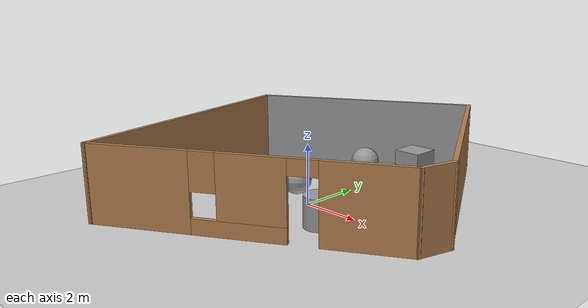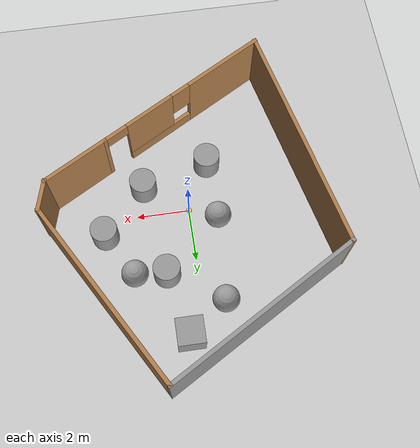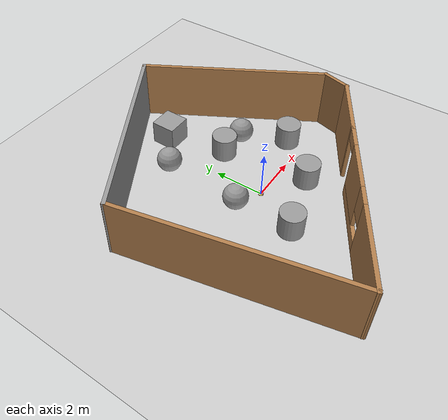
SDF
<sdf version="1.7">
 <world name="default">
  <light name="sun" type="directional">
   <pose>0 0 10 0 -0 0</pose>
   <diffuse>0.8 0.8 0.8 1</diffuse>
   <specular>0.2 0.2 0.2 1</specular>
   <attenuation>
    <range>1000</range>
    <constant>0.9</constant>
    <linear>0.01</linear>
    <quadratic>0.001</quadratic>
   </attenuation>
   <direction>-0.5 0.1 -0.9</direction>
   <spot><inner_angle>0</inner_angle><outer_angle>0</outer_angle><falloff>0</falloff></spot>
  </light>
  <model name="ground_plane">
   <static>1</static>
   <link name="link">
    <collision name="collision">
     <geometry><plane><normal>0 0 1</normal><size>100 100</size></plane></geometry>
     <surface>
      <contact><collide_bitmask>65535</collide_bitmask></contact>
      <friction><ode><mu>100</mu><mu2>50</mu2></ode></friction>
     </surface>
    </collision>
    <visual name="visual">
     <cast_shadows>0</cast_shadows>
     <geometry><plane><normal>0 0 1</normal><size>100 100</size></plane></geometry>
     <material>
      <script><uri>file://media/materials/scripts/gazebo.material</uri><name>Gazebo/Grey</name></script>
     </material>
    </visual>
   </link>
  </model>
  <gravity>0 0 -9.8</gravity>
  <magnetic_field>6e-06 2.3e-05 -4.2e-05</magnetic_field>
  <atmosphere type="adiabatic"/>
  <physics type="ode">
   <max_step_size>0.001</max_step_size>
   <real_time_factor>1</real_time_factor>
   <real_time_update_rate>1000</real_time_update_rate>
  </physics>
  <scene><ambient>0.4 0.4 0.4 1</ambient><background>0.7 0.7 0.7 1</background><shadows>1</shadows></scene>
  <spherical_coordinates>
   <surface_model>EARTH_WGS84</surface_model>
   <latitude_deg>0</latitude_deg>
   <longitude_deg>0</longitude_deg>
   <elevation>0</elevation>
   <heading_deg>0</heading_deg>
  </spherical_coordinates>
  <model name="mycar">
   <link name="base_footprint">
    <inertial>
     <pose>0.00127 0 0.093611 0 -0 0</pose>
     <mass>0.63</mass>
     <inertia>
      <ixx>0.00557395</ixx>
      <ixy>0</ixy>
      <ixz>-1.11111e-05</ixz>
      <iyy>0.00563694</iyy>
      <iyz>0</iyz>
      <izz>0.00261003</izz>
     </inertia>
    </inertial>
    <collision name="base_footprint_fixed_joint_lump__base_link_collision">
     <pose>0 0 0.055 0 -0 0</pose>
     <geometry><cylinder><length>0.08</length><radius>0.1</radius></cylinder></geometry>
    </collision>
    <collision name="base_footprint_fixed_joint_lump__camera_collision_1">
     <pose>0.08 0 0.1075 0 -0 0</pose>
     <geometry><box><size>0.01 0.025 0.025</size></box></geometry>
    </collision>
    <collision name="base_footprint_fixed_joint_lump__support_collision_2">
     <pose>0 0 0.17 0 -0 0</pose>
     <geometry><cylinder><length>0.15</length><radius>0.01</radius></cylinder></geometry>
    </collision>
    <collision name="base_footprint_fixed_joint_lump__laser_collision_3">
     <pose>0 0 0.27 0 -0 0</pose>
     <geometry><cylinder><length>0.05</length><radius>0.03</radius></cylinder></geometry>
    </collision>
    <visual name="base_footprint_visual"><geometry><sphere><radius>0.001</radius></sphere></geometry></visual>
    <visual name="base_footprint_fixed_joint_lump__base_link_visual_1">
     <pose>0 0 0.055 0 -0 0</pose>
     <geometry><cylinder><length>0.08</length><radius>0.1</radius></cylinder></geometry>
     <material>
      <script><name>Gazebo/Yellow</name><uri>file://media/materials/scripts/gazebo.material</uri></script>
     </material>
    </visual>
    <visual name="base_footprint_fixed_joint_lump__camera_visual_2">
     <pose>0.08 0 0.1075 0 -0 0</pose>
     <geometry><box><size>0.01 0.025 0.025</size></box></geometry>
     <material>
      <script><name>Gazebo/Blue</name><uri>file://media/materials/scripts/gazebo.material</uri></script>
     </material>
    </visual>
    <visual name="base_footprint_fixed_joint_lump__support_visual_3">
     <pose>0 0 0.17 0 -0 0</pose>
     <geometry><cylinder><length>0.15</length><radius>0.01</radius></cylinder></geometry>
     <material>
      <script><name>Gazebo/White</name><uri>file://media/materials/scripts/gazebo.material</uri></script>
     </material>
    </visual>
    <visual name="base_footprint_fixed_joint_lump__laser_visual_4">
     <pose>0 0 0.27 0 -0 0</pose>
     <geometry><cylinder><length>0.05</length><radius>0.03</radius></cylinder></geometry>
     <material>
      <script><name>Gazebo/Black</name><uri>file://media/materials/scripts/gazebo.material</uri></script>
     </material>
    </visual>
   </link>
   <joint name="back_wheel2base_link" type="revolute">
    <pose relative_to="base_footprint">-0.0925 0 0.0075 0 -0 0</pose>
    <parent>base_footprint</parent>
    <child>back_wheel</child>
    <axis>
     <xyz>1 1 1</xyz>
     <limit><lower>-1e+16</lower><upper>1e+16</upper></limit>
     <dynamics><spring_reference>0</spring_reference><spring_stiffness>0</spring_stiffness></dynamics>
    </axis>
   </joint>
   <link name="back_wheel">
    <pose relative_to="back_wheel2base_link">0 0 0 0 -0 0</pose>
    <inertial>
     <mass>0.03</mass>
     <inertia>
      <ixx>6.75e-07</ixx>
      <ixy>0</ixy>
      <ixz>0</ixz>
      <iyy>6.75e-07</iyy>
      <iyz>0</iyz>
      <izz>6.75e-07</izz>
     </inertia>
    </inertial>
    <collision name="back_wheel_collision">
     <geometry><sphere><radius>0.0075</radius></sphere></geometry>
    </collision>
    <visual name="back_wheel_visual">
     <geometry><sphere><radius>0.0075</radius></sphere></geometry>
     <material>
      <script><name>Gazebo/Red</name><uri>file://media/materials/scripts/gazebo.material</uri></script>
     </material>
    </visual>
   </link>
   <joint name="front_wheel2base_link" type="revolute">
    <pose relative_to="base_footprint">0.0925 0 0.0075 0 -0 0</pose>
    <parent>base_footprint</parent>
    <child>front_wheel</child>
    <axis>
     <xyz>1 1 1</xyz>
     <limit><lower>-1e+16</lower><upper>1e+16</upper></limit>
     <dynamics><spring_reference>0</spring_reference><spring_stiffness>0</spring_stiffness></dynamics>
    </axis>
   </joint>
   <link name="front_wheel">
    <pose relative_to="front_wheel2base_link">0 0 0 0 -0 0</pose>
    <inertial>
     <mass>0.03</mass>
     <inertia>
      <ixx>6.75e-07</ixx>
      <ixy>0</ixy>
      <ixz>0</ixz>
      <iyy>6.75e-07</iyy>
      <iyz>0</iyz>
      <izz>6.75e-07</izz>
     </inertia>
    </inertial>
    <collision name="front_wheel_collision">
     <geometry><sphere><radius>0.0075</radius></sphere></geometry>
    </collision>
    <visual name="front_wheel_visual">
     <geometry><sphere><radius>0.0075</radius></sphere></geometry>
     <material>
      <script><name>Gazebo/Red</name><uri>file://media/materials/scripts/gazebo.material</uri></script>
     </material>
    </visual>
   </link>
   <joint name="left_wheel2base_link" type="revolute">
    <pose relative_to="base_footprint">0 0.1 0.0325 0 -0 0</pose>
    <parent>base_footprint</parent>
    <child>left_wheel</child>
    <axis>
     <xyz>0 1 0</xyz>
     <limit><lower>-1e+16</lower><upper>1e+16</upper></limit>
     <dynamics><spring_reference>0</spring_reference><spring_stiffness>0</spring_stiffness></dynamics>
    </axis>
   </joint>
   <link name="left_wheel">
    <pose relative_to="left_wheel2base_link">0 0 0 0 -0 0</pose>
    <inertial>
     <mass>0.05</mass>
     <inertia>
      <ixx>1.41406e-05</ixx>
      <ixy>0</ixy>
      <ixz>0</ixz>
      <iyy>1.41406e-05</iyy>
      <iyz>0</iyz>
      <izz>2.64063e-05</izz>
     </inertia>
    </inertial>
    <collision name="left_wheel_collision">
     <pose>0 0 0 1.5708 -0 0</pose>
     <geometry><cylinder><length>0.015</length><radius>0.0325</radius></cylinder></geometry>
    </collision>
    <visual name="left_wheel_visual">
     <pose>0 0 0 1.5708 -0 0</pose>
     <geometry><cylinder><length>0.015</length><radius>0.0325</radius></cylinder></geometry>
     <material>
      <script><name>Gazebo/Red</name><uri>file://media/materials/scripts/gazebo.material</uri></script>
     </material>
    </visual>
   </link>
   <joint name="right_wheel2base_link" type="revolute">
    <pose relative_to="base_footprint">0 -0.1 0.0325 0 -0 0</pose>
    <parent>base_footprint</parent>
    <child>right_wheel</child>
    <axis>
     <xyz>0 1 0</xyz>
     <limit><lower>-1e+16</lower><upper>1e+16</upper></limit>
     <dynamics><spring_reference>0</spring_reference><spring_stiffness>0</spring_stiffness></dynamics>
    </axis>
   </joint>
   <link name="right_wheel">
    <pose relative_to="right_wheel2base_link">0 0 0 0 -0 0</pose>
    <inertial>
     <mass>0.05</mass>
     <inertia>
      <ixx>1.41406e-05</ixx>
      <ixy>0</ixy>
      <ixz>0</ixz>
      <iyy>1.41406e-05</iyy>
      <iyz>0</iyz>
      <izz>2.64063e-05</izz>
     </inertia>
    </inertial>
    <collision name="right_wheel_collision">
     <pose>0 0 0 1.5708 -0 0</pose>
     <geometry><cylinder><length>0.015</length><radius>0.0325</radius></cylinder></geometry>
    </collision>
    <visual name="right_wheel_visual">
     <pose>0 0 0 1.5708 -0 0</pose>
     <geometry><cylinder><length>0.015</length><radius>0.0325</radius></cylinder></geometry>
     <material>
      <script><name>Gazebo/Red</name><uri>file://media/materials/scripts/gazebo.material</uri></script>
     </material>
    </visual>
   </link>
   <pose>0.001307 -0.00053 0 0 0 -0.011975</pose>
  </model>
  <model name="unit_cylinder">
   <pose>1.13543 2.4548 0.499998 3e-06 4e-06 -0</pose>
   <link name="link">
    <inertial>
     <mass>1</mass>
     <inertia><ixx>0.145833</ixx><ixy>0</ixy><ixz>0</ixz><iyy>0.145833</iyy><iyz>0</iyz><izz>0.125</izz></inertia>
    </inertial>
    <collision name="collision">
     <geometry><cylinder><radius>0.5</radius><length>1</length></cylinder></geometry>
    </collision>
    <visual name="visual">
     <geometry><cylinder><radius>0.5</radius><length>1</length></cylinder></geometry>
     <material>
      <script><name>Gazebo/Grey</name><uri>file://media/materials/scripts/gazebo.material</uri></script>
     </material>
    </visual>
   </link>
  </model>
  <light name="user_point_light_0" type="point">
   <pose>-3.74299 -4.71686 1 0 -0 0</pose>
   <diffuse>0.5 0.5 0.5 1</diffuse>
   <specular>0.1 0.1 0.1 1</specular>
   <attenuation>
    <range>20</range>
    <constant>0.5</constant>
    <linear>0.01</linear>
    <quadratic>0.001</quadratic>
   </attenuation>
   <cast_shadows>0</cast_shadows>
   <direction>0 0 -1</direction>
   <spot><inner_angle>0</inner_angle><outer_angle>0</outer_angle><falloff>0</falloff></spot>
  </light>
  <model name="unit_sphere">
   <pose>-0.849558 3.76213 0.5 0 -0 0</pose>
   <link name="link">
    <inertial>
     <mass>1</mass>
     <inertia><ixx>0.1</ixx><ixy>0</ixy><ixz>0</ixz><iyy>0.1</iyy><iyz>0</iyz><izz>0.1</izz></inertia>
    </inertial>
    <collision name="collision"><geometry><sphere><radius>0.5</radius></sphere></geometry></collision>
    <visual name="visual">
     <geometry><sphere><radius>0.5</radius></sphere></geometry>
     <material>
      <script><name>Gazebo/Grey</name><uri>file://media/materials/scripts/gazebo.material</uri></script>
     </material>
    </visual>
   </link>
  </model>
  <model name="unit_cylinder_0">
   <pose>1.6125 -1.08654 0.499998 3e-06 4e-06 -0</pose>
   <link name="link">
    <inertial>
     <mass>1</mass>
     <inertia><ixx>0.145833</ixx><ixy>0</ixy><ixz>0</ixz><iyy>0.145833</iyy><iyz>0</iyz><izz>0.125</izz></inertia>
    </inertial>
    <collision name="collision">
     <geometry><cylinder><radius>0.5</radius><length>1</length></cylinder></geometry>
    </collision>
    <visual name="visual">
     <geometry><cylinder><radius>0.5</radius><length>1</length></cylinder></geometry>
     <material>
      <script><name>Gazebo/Grey</name><uri>file://media/materials/scripts/gazebo.material</uri></script>
     </material>
    </visual>
   </link>
  </model>
  <model name="unit_cylinder_1">
   <pose>3.24744 0.664009 0.499998 3e-06 4e-06 -0</pose>
   <link name="link">
    <inertial>
     <mass>1</mass>
     <inertia><ixx>0.145833</ixx><ixy>0</ixy><ixz>0</ixz><iyy>0.145833</iyy><iyz>0</iyz><izz>0.125</izz></inertia>
    </inertial>
    <collision name="collision">
     <geometry><cylinder><radius>0.5</radius><length>1</length></cylinder></geometry>
    </collision>
    <visual name="visual">
     <geometry><cylinder><radius>0.5</radius><length>1</length></cylinder></geometry>
     <material>
      <script><name>Gazebo/Grey</name><uri>file://media/materials/scripts/gazebo.material</uri></script>
     </material>
    </visual>
   </link>
  </model>
  <model name="unit_sphere_0">
   <pose>2.30045 2.37198 0.5 0 -0 0</pose>
   <link name="link">
    <inertial>
     <mass>1</mass>
     <inertia><ixx>0.1</ixx><ixy>0</ixy><ixz>0</ixz><iyy>0.1</iyy><iyz>0</iyz><izz>0.1</izz></inertia>
    </inertial>
    <collision name="collision"><geometry><sphere><radius>0.5</radius></sphere></geometry></collision>
    <visual name="visual">
     <geometry><sphere><radius>0.5</radius></sphere></geometry>
     <material>
      <script><name>Gazebo/Grey</name><uri>file://media/materials/scripts/gazebo.material</uri></script>
     </material>
    </visual>
   </link>
  </model>
  <model name="unit_box">
   <pose>0.593522 4.83968 0.499995 0 -1e-05 0</pose>
   <link name="link">
    <inertial>
     <mass>1</mass>
     <inertia>
      <ixx>0.166667</ixx>
      <ixy>0</ixy>
      <ixz>0</ixz>
      <iyy>0.166667</iyy>
      <iyz>0</iyz>
      <izz>0.166667</izz>
     </inertia>
    </inertial>
    <collision name="collision"><geometry><box><size>1 1 1</size></box></geometry></collision>
    <visual name="visual">
     <geometry><box><size>1 1 1</size></box></geometry>
     <material>
      <script><name>Gazebo/Grey</name><uri>file://media/materials/scripts/gazebo.material</uri></script>
     </material>
    </visual>
   </link>
  </model>
  <model name="unit_sphere_1">
   <pose>-1.0471 0.499751 0.5 0 -0 0</pose>
   <link name="link">
    <inertial>
     <mass>1</mass>
     <inertia><ixx>0.1</ixx><ixy>0</ixy><ixz>0</ixz><iyy>0.1</iyy><iyz>0</iyz><izz>0.1</izz></inertia>
    </inertial>
    <collision name="collision"><geometry><sphere><radius>0.5</radius></sphere></geometry></collision>
    <visual name="visual">
     <geometry><sphere><radius>0.5</radius></sphere></geometry>
     <material>
      <script><name>Gazebo/Grey</name><uri>file://media/materials/scripts/gazebo.material</uri></script>
     </material>
    </visual>
   </link>
  </model>
  <model name="unit_cylinder_2">
   <pose>-0.937418 -1.80997 0.499997 3e-06 4e-06 -0</pose>
   <link name="link">
    <inertial>
     <mass>1</mass>
     <inertia><ixx>0.145833</ixx><ixy>0</ixy><ixz>0</ixz><iyy>0.145833</iyy><iyz>0</iyz><izz>0.125</izz></inertia>
    </inertial>
    <collision name="collision">
     <geometry><cylinder><radius>0.5</radius><length>1</length></cylinder></geometry>
    </collision>
    <visual name="visual">
     <geometry><cylinder><radius>0.5</radius><length>1</length></cylinder></geometry>
     <material>
      <script><name>Gazebo/Grey</name><uri>file://media/materials/scripts/gazebo.material</uri></script>
     </material>
    </visual>
   </link>
  </model>
  <model name="car1">
   <pose>-0.001672 0.554943 0 0 -0 0</pose>
   <link name="Wall_0">
    <pose>-0.311607 -4.47216 0 0 -0 0.523599</pose>
    <visual name="Wall_0_Visual_0">
     <pose>-1.95867 0 1.25 0 -0 0</pose>
     <geometry><box><size>3.33266 0.15 2.5</size></box></geometry>
     <material>
      <script><uri>file://media/materials/scripts/gazebo.material</uri><name>Gazebo/Wood</name></script>
      <ambient>1 1 1 1</ambient>
     </material>
     <meta><layer>0</layer></meta>
    </visual>
    <collision name="Wall_0_Collision_0">
     <geometry><box><size>3.33266 0.15 2.5</size></box></geometry>
     <pose>-1.95867 0 1.25 0 -0 0</pose>
    </collision>
    <visual name="Wall_0_Visual_1">
     <pose>3.55262 0 1.25 0 -0 0</pose>
     <geometry><box><size>0.144758 0.15 2.5</size></box></geometry>
     <material>
      <script><uri>file://media/materials/scripts/gazebo.material</uri><name>Gazebo/Wood</name></script>
      <ambient>1 1 1 1</ambient>
     </material>
     <meta><layer>0</layer></meta>
    </visual>
    <collision name="Wall_0_Collision_1">
     <geometry><box><size>0.144758 0.15 2.5</size></box></geometry>
     <pose>3.55262 0 1.25 0 -0 0</pose>
    </collision>
    <visual name="Wall_0_Visual_2">
     <pose>1.14395 0 0.25 0 -0 0</pose>
     <geometry><box><size>2.87258 0.15 0.5</size></box></geometry>
     <material>
      <script><uri>file://media/materials/scripts/gazebo.material</uri><name>Gazebo/Wood</name></script>
      <ambient>1 1 1 1</ambient>
     </material>
     <meta><layer>0</layer></meta>
    </visual>
    <collision name="Wall_0_Collision_2">
     <geometry><box><size>2.87258 0.15 0.5</size></box></geometry>
     <pose>1.14395 0 0.25 0 -0 0</pose>
    </collision>
    <visual name="Wall_0_Visual_3">
     <pose>1.54395 0 1.5 0 -0 0</pose>
     <geometry><box><size>2.07258 0.15 2</size></box></geometry>
     <material>
      <script><uri>file://media/materials/scripts/gazebo.material</uri><name>Gazebo/Wood</name></script>
      <ambient>1 1 1 1</ambient>
     </material>
     <meta><layer>0</layer></meta>
    </visual>
    <collision name="Wall_0_Collision_3">
     <geometry><box><size>2.07258 0.15 2</size></box></geometry>
     <pose>1.54395 0 1.5 0 -0 0</pose>
    </collision>
    <visual name="Wall_0_Visual_4">
     <pose>0.107665 0 1.9 0 -0 0</pose>
     <geometry><box><size>0.8 0.15 1.2</size></box></geometry>
     <material>
      <script><uri>file://media/materials/scripts/gazebo.material</uri><name>Gazebo/Wood</name></script>
      <ambient>1 1 1 1</ambient>
     </material>
     <meta><layer>0</layer></meta>
    </visual>
    <collision name="Wall_0_Collision_4">
     <geometry><box><size>0.8 0.15 1.2</size></box></geometry>
     <pose>0.107665 0 1.9 0 -0 0</pose>
    </collision>
    <visual name="Wall_0_Visual_5">
     <pose>3.03024 0 2.25 0 -0 0</pose>
     <geometry><box><size>0.9 0.15 0.5</size></box></geometry>
     <material>
      <script><uri>file://media/materials/scripts/gazebo.material</uri><name>Gazebo/Wood</name></script>
      <ambient>1 1 1 1</ambient>
     </material>
     <meta><layer>0</layer></meta>
    </visual>
    <collision name="Wall_0_Collision_5">
     <geometry><box><size>0.9 0.15 0.5</size></box></geometry>
     <pose>3.03024 0 2.25 0 -0 0</pose>
    </collision>
   </link>
   <link name="Wall_1">
    <collision name="Wall_1_Collision">
     <geometry><box><size>2.75 0.15 2.5</size></box></geometry>
     <pose>0 0 1.25 0 -0 0</pose>
    </collision>
    <visual name="Wall_1_Visual">
     <pose>0 0 1.25 0 -0 0</pose>
     <geometry><box><size>2.75 0.15 2.5</size></box></geometry>
     <material>
      <script><uri>file://media/materials/scripts/gazebo.material</uri><name>Gazebo/Wood</name></script>
      <ambient>1 1 1 1</ambient>
     </material>
     <meta><layer>0</layer></meta>
    </visual>
    <pose>3.88862 -2.04716 0 0 -0 0.523599</pose>
   </link>
   <link name="Wall_2">
    <collision name="Wall_2_Collision">
     <geometry><box><size>1.25 0.15 2.5</size></box></geometry>
     <pose>0 0 1.25 0 -0 0</pose>
    </collision>
    <visual name="Wall_2_Visual">
     <pose>0 0 1.25 0 -0 0</pose>
     <geometry><box><size>1.25 0.15 2.5</size></box></geometry>
     <material>
      <script><uri>file://media/materials/scripts/gazebo.material</uri><name>Gazebo/Wood</name></script>
      <ambient>1 1 1 1</ambient>
     </material>
     <meta><layer>0</layer></meta>
    </visual>
    <pose>5.1568 -0.865897 0 0 -0 1.309</pose>
   </link>
   <link name="Wall_3">
    <collision name="Wall_3_Collision">
     <geometry><box><size>7.75 0.15 2.5</size></box></geometry>
     <pose>0 0 1.25 0 -0 0</pose>
    </collision>
    <visual name="Wall_3_Visual">
     <pose>0 0 1.25 0 -0 0</pose>
     <geometry><box><size>7.75 0.15 2.5</size></box></geometry>
     <material>
      <script><uri>file://media/materials/scripts/gazebo.material</uri><name>Gazebo/Wood</name></script>
      <ambient>1 1 1 1</ambient>
     </material>
     <meta><layer>0</layer></meta>
    </visual>
    <pose>3.39915 2.95626 0 0 -0 2.0944</pose>
   </link>
   <link name="Wall_4">
    <collision name="Wall_4_Collision">
     <geometry><box><size>8 0.15 2.5</size></box></geometry>
     <pose>0 0 1.25 0 -0 0</pose>
    </collision>
    <visual name="Wall_4_Visual">
     <pose>0 0 1.25 0 -0 0</pose>
     <geometry><box><size>8 0.15 2.5</size></box></geometry>
     <material>
      <script><uri>file://media/materials/scripts/gazebo.material</uri><name>Gazebo/Grey</name></script>
      <ambient>1 1 1 1</ambient>
     </material>
     <meta><layer>0</layer></meta>
    </visual>
    <pose>-1.9 4.28466 0 0 -0 -2.61799</pose>
   </link>
   <link name="Wall_5">
    <collision name="Wall_5_Collision">
     <geometry><box><size>8.93028 0.15 2.5</size></box></geometry>
     <pose>0 0 1.25 0 -0 0</pose>
    </collision>
    <visual name="Wall_5_Visual">
     <pose>0 0 1.25 0 -0 0</pose>
     <geometry><box><size>8.93028 0.15 2.5</size></box></geometry>
     <material>
      <script><uri>file://media/materials/scripts/gazebo.material</uri><name>Gazebo/Wood</name></script>
      <ambient>1 1 1 1</ambient>
     </material>
     <meta><layer>0</layer></meta>
    </visual>
    <pose>-4.34257 -1.9625 0 0 -0 -1.35114</pose>
   </link>
   <static>1</static>
  </model>
 </world>
</sdf>
